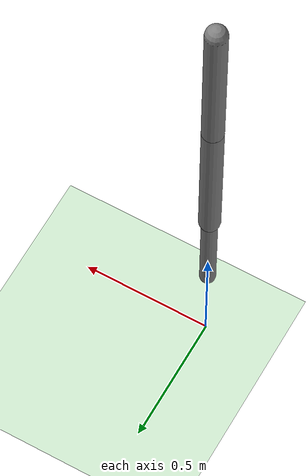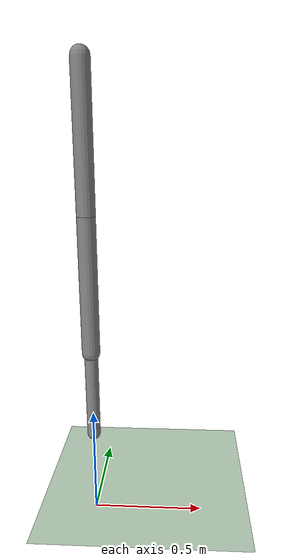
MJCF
<?xml version='1.0' encoding='UTF-8'?>
<!-- Double pendulum: multi-joint chain. Stresses STRUCT_SHRINK / STRUCT_REWIRE / JOINT_PERTURB. --><mujoco model="double_pendulum">
  <option gravity="0 0 -9.81" timestep="0.005" integrator="implicitfast"/>
  <worldbody>
    <light pos="0 0 3"/>
    <geom name="floor" type="plane" size="2 2 0.1" rgba="0.8 0.9 0.8 1"/>
    <body name="link1" pos="0 0 2">
      <joint name="hinge1" type="hinge" axis="0 1 0" range="-3.14 3.14" damping="0.05"/>
      <geom name="g1" type="capsule" fromto="0 0 0 0 0 -0.6" size="0.04" mass="0.8"/>
      <body name="link2" pos="0 0 -0.6">
        <joint name="hinge2" type="hinge" axis="0 1 0" range="-3.14 3.14" damping="0.05"/>
        <geom name="g2" type="capsule" fromto="0 0 0 0 0 -0.6" size="0.04" mass="0.5"/>
        <body name="link3" pos="0 0 -0.6">
          <joint name="hinge3" type="hinge" axis="0 1 0" range="-3.14 3.14" damping="0.05"/>
          <geom name="g3" type="capsule" fromto="0 0 0 0 0 -0.4" size="0.03" mass="0.3"/>
        </body>
      </body>
    </body>
  </worldbody>
  <actuator>
    <motor name="t1" joint="hinge1" ctrlrange="-3 3"/>
    <motor name="t2" joint="hinge2" ctrlrange="-2 2"/>
    <motor name="t3" joint="hinge3" ctrlrange="-1 1"/>
  </actuator>
</mujoco>
